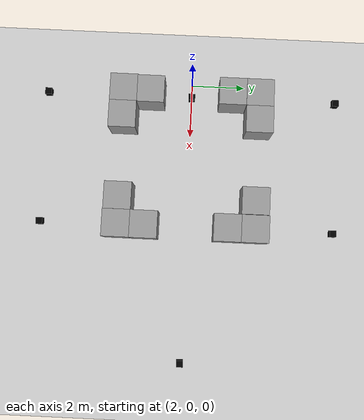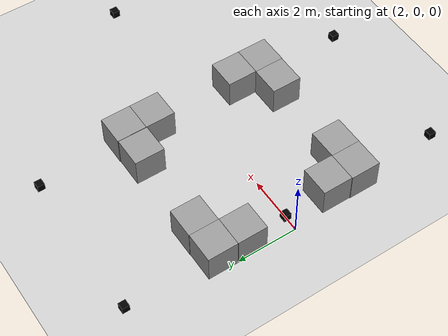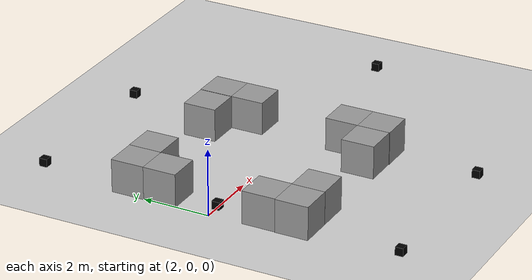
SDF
<sdf version="1.6">
 <world name="default">
  <light name="sun" type="directional">
   <pose>0 0 10 0 -0 0</pose>
   <diffuse>0.8 0.8 0.8 1</diffuse>
   <specular>0.2 0.2 0.2 1</specular>
   <attenuation>
    <range>1000</range>
    <constant>0.9</constant>
    <linear>0.01</linear>
    <quadratic>0.001</quadratic>
   </attenuation>
   <direction>-0.5 0.1 -0.9</direction>
  </light>
  <model name="ground_plane">
   <static>1</static>
   <link name="link">
    <collision name="collision">
     <geometry><plane><normal>0 0 1</normal><size>100 100</size></plane></geometry>
     <surface>
      <contact><collide_bitmask>65535</collide_bitmask></contact>
      <friction><ode><mu>100</mu><mu2>50</mu2></ode></friction>
     </surface>
    </collision>
    <visual name="visual">
     <cast_shadows>0</cast_shadows>
     <geometry><plane><normal>0 0 1</normal><size>100 100</size></plane></geometry>
     <material>
      <script><uri>file://media/materials/scripts/gazebo.material</uri><name>Gazebo/Grey</name></script>
     </material>
    </visual>
   </link>
  </model>
  <gravity>0 0 -9.8</gravity>
  <magnetic_field>6e-06 2.3e-05 -4.2e-05</magnetic_field>
  <atmosphere type="adiabatic"/>
  <physics name="default_physics" default="0" type="ode">
   <max_step_size>0.001</max_step_size>
   <real_time_factor>1</real_time_factor>
   <real_time_update_rate>1000</real_time_update_rate>
  </physics>
  <scene><ambient>0.4 0.4 0.4 1</ambient><background>0.7 0.7 0.7 1</background><shadows>1</shadows></scene>
  <audio><device>default</device></audio>
  <spherical_coordinates>
   <surface_model>EARTH_WGS84</surface_model>
   <latitude_deg>0</latitude_deg>
   <longitude_deg>0</longitude_deg>
   <elevation>0</elevation>
   <heading_deg>0</heading_deg>
  </spherical_coordinates>
  <model name="unit_box">
   <pose>2.48136 2.52142 0.499995 1e-05 -0 1.8e-05</pose>
   <link name="link">
    <inertial>
     <mass>1</mass>
     <inertia>
      <ixx>0.166667</ixx>
      <ixy>0</ixy>
      <ixz>0</ixz>
      <iyy>0.166667</iyy>
      <iyz>0</iyz>
      <izz>0.166667</izz>
     </inertia>
    </inertial>
    <collision name="collision"><geometry><box><size>1 1 1</size></box></geometry></collision>
    <visual name="visual">
     <geometry><box><size>1 1 1</size></box></geometry>
     <material>
      <script><name>Gazebo/Grey</name><uri>file://media/materials/scripts/gazebo.material</uri></script>
     </material>
    </visual>
   </link>
  </model>
  <model name="unit_box_0">
   <pose>2.49745 -2.5082 0.499995 1e-05 -0 -0.000193</pose>
   <link name="link">
    <inertial>
     <mass>1</mass>
     <inertia>
      <ixx>0.166667</ixx>
      <ixy>0</ixy>
      <ixz>0</ixz>
      <iyy>0.166667</iyy>
      <iyz>0</iyz>
      <izz>0.166667</izz>
     </inertia>
    </inertial>
    <collision name="collision"><geometry><box><size>1 1 1</size></box></geometry></collision>
    <visual name="visual">
     <geometry><box><size>1 1 1</size></box></geometry>
     <material>
      <script><name>Gazebo/Grey</name><uri>file://media/materials/scripts/gazebo.material</uri></script>
     </material>
    </visual>
   </link>
  </model>
  <model name="unit_box_1">
   <pose>7.50002 2.50256 0.499995 0 1e-05 -1.1e-05</pose>
   <link name="link">
    <inertial>
     <mass>1</mass>
     <inertia>
      <ixx>0.166667</ixx>
      <ixy>0</ixy>
      <ixz>0</ixz>
      <iyy>0.166667</iyy>
      <iyz>0</iyz>
      <izz>0.166667</izz>
     </inertia>
    </inertial>
    <collision name="collision"><geometry><box><size>1 1 1</size></box></geometry></collision>
    <visual name="visual">
     <geometry><box><size>1 1 1</size></box></geometry>
     <material>
      <script><name>Gazebo/Grey</name><uri>file://media/materials/scripts/gazebo.material</uri></script>
     </material>
    </visual>
   </link>
  </model>
  <model name="unit_box_2">
   <pose>7.5025 -2.52131 0.499995 0 1e-05 -0.000121</pose>
   <link name="link">
    <inertial>
     <mass>1</mass>
     <inertia>
      <ixx>0.166667</ixx>
      <ixy>0</ixy>
      <ixz>0</ixz>
      <iyy>0.166667</iyy>
      <iyz>0</iyz>
      <izz>0.166667</izz>
     </inertia>
    </inertial>
    <collision name="collision"><geometry><box><size>1 1 1</size></box></geometry></collision>
    <visual name="visual">
     <geometry><box><size>1 1 1</size></box></geometry>
     <material>
      <script><name>Gazebo/Grey</name><uri>file://media/materials/scripts/gazebo.material</uri></script>
     </material>
    </visual>
   </link>
  </model>
  <model name="aruco_box_0">
   <link name="link_0">
    <inertial>
     <mass>1</mass>
     <inertia>
      <ixx>0.166667</ixx>
      <ixy>0</ixy>
      <ixz>0</ixz>
      <iyy>0.166667</iyy>
      <iyz>0</iyz>
      <izz>0.166667</izz>
     </inertia>
    </inertial>
    <visual name="visual">
     <geometry><box><size>0.24 0.24 0.24</size></box></geometry>
     <material>
      <lighting>1</lighting>
      <script>
       <uri>model://aruco_box_0/materials/scripts</uri>
       <uri>model://aruco_box_0/materials/textures</uri>
       <name>Aruco/Id0</name>
      </script>
      <shader type="vertex"><normal_map>__default__</normal_map></shader>
      <ambient>0 0 0 1</ambient>
      <diffuse>0 0 0 1</diffuse>
      <specular>0 0 0 0</specular>
      <emissive>1 1 1 1</emissive>
     </material>
    </visual>
    <collision name="collision">
     <geometry><box><size>0.24 0.24 0.24</size></box></geometry>
     <surface>
      <friction>
       <ode><mu>1</mu><mu2>1</mu2><fdir1>0 0 0</fdir1><slip1>0</slip1><slip2>0</slip2></ode>
       <torsional>
        <coefficient>1</coefficient>
        <patch_radius>0</patch_radius>
        <surface_radius>0</surface_radius>
        <use_patch_radius>1</use_patch_radius>
        <ode><slip>0</slip></ode>
       </torsional>
      </friction>
      <bounce><restitution_coefficient>0</restitution_coefficient><threshold>1e+06</threshold></bounce>
      <contact>
       <collide_without_contact>0</collide_without_contact>
       <collide_without_contact_bitmask>1</collide_without_contact_bitmask>
       <collide_bitmask>1</collide_bitmask>
       <ode>
        <soft_cfm>0</soft_cfm>
        <soft_erp>0.2</soft_erp>
        <kp>1e+13</kp>
        <kd>1</kd>
        <max_vel>0.01</max_vel>
        <min_depth>0</min_depth>
       </ode>
       <bullet>
        <split_impulse>1</split_impulse>
        <split_impulse_penetration_threshold>-0.01</split_impulse_penetration_threshold>
        <soft_cfm>0</soft_cfm>
        <soft_erp>0.2</soft_erp>
        <kp>1e+13</kp>
        <kd>1</kd>
       </bullet>
      </contact>
     </surface>
    </collision>
   </link>
   <static>0</static>
   <pose>2.5 -0 0.12 0 -0 0</pose>
  </model>
  <model name="aruco_box_1">
   <link name="link_0">
    <inertial>
     <mass>1</mass>
     <inertia>
      <ixx>0.166667</ixx>
      <ixy>0</ixy>
      <ixz>0</ixz>
      <iyy>0.166667</iyy>
      <iyz>0</iyz>
      <izz>0.166667</izz>
     </inertia>
    </inertial>
    <visual name="visual">
     <geometry><box><size>0.24 0.24 0.24</size></box></geometry>
     <material>
      <lighting>1</lighting>
      <script>
       <uri>model://aruco_box_1/materials/scripts</uri>
       <uri>model://aruco_box_1/materials/textures</uri>
       <name>Aruco/Id1</name>
      </script>
      <shader type="vertex"><normal_map>__default__</normal_map></shader>
      <ambient>0 0 0 1</ambient>
      <diffuse>0 0 0 1</diffuse>
      <specular>0 0 0 0</specular>
      <emissive>1 1 1 1</emissive>
     </material>
    </visual>
    <collision name="collision">
     <geometry><box><size>0.24 0.24 0.24</size></box></geometry>
     <surface>
      <friction>
       <ode><mu>1</mu><mu2>1</mu2><fdir1>0 0 0</fdir1><slip1>0</slip1><slip2>0</slip2></ode>
       <torsional>
        <coefficient>1</coefficient>
        <patch_radius>0</patch_radius>
        <surface_radius>0</surface_radius>
        <use_patch_radius>1</use_patch_radius>
        <ode><slip>0</slip></ode>
       </torsional>
      </friction>
      <bounce><restitution_coefficient>0</restitution_coefficient><threshold>1e+06</threshold></bounce>
      <contact>
       <collide_without_contact>0</collide_without_contact>
       <collide_without_contact_bitmask>1</collide_without_contact_bitmask>
       <collide_bitmask>1</collide_bitmask>
       <ode>
        <soft_cfm>0</soft_cfm>
        <soft_erp>0.2</soft_erp>
        <kp>1e+13</kp>
        <kd>1</kd>
        <max_vel>0.01</max_vel>
        <min_depth>0</min_depth>
       </ode>
       <bullet>
        <split_impulse>1</split_impulse>
        <split_impulse_penetration_threshold>-0.01</split_impulse_penetration_threshold>
        <soft_cfm>0</soft_cfm>
        <soft_erp>0.2</soft_erp>
        <kp>1e+13</kp>
        <kd>1</kd>
       </bullet>
      </contact>
     </surface>
    </collision>
   </link>
   <static>0</static>
   <pose>2.5 5.5 0.12 0 -0 0</pose>
  </model>
  <model name="aruco_box_2">
   <link name="link_0">
    <inertial>
     <mass>1</mass>
     <inertia>
      <ixx>0.166667</ixx>
      <ixy>0</ixy>
      <ixz>0</ixz>
      <iyy>0.166667</iyy>
      <iyz>0</iyz>
      <izz>0.166667</izz>
     </inertia>
    </inertial>
    <visual name="visual">
     <geometry><box><size>0.24 0.24 0.24</size></box></geometry>
     <material>
      <lighting>1</lighting>
      <script>
       <uri>model://aruco_box_2/materials/scripts</uri>
       <uri>model://aruco_box_2/materials/textures</uri>
       <name>Aruco/Id2</name>
      </script>
      <shader type="vertex"><normal_map>__default__</normal_map></shader>
      <ambient>0 0 0 1</ambient>
      <diffuse>0 0 0 1</diffuse>
      <specular>0 0 0 0</specular>
      <emissive>1 1 1 1</emissive>
     </material>
    </visual>
    <collision name="collision">
     <geometry><box><size>0.24 0.24 0.24</size></box></geometry>
     <surface>
      <friction>
       <ode><mu>1</mu><mu2>1</mu2><fdir1>0 0 0</fdir1><slip1>0</slip1><slip2>0</slip2></ode>
       <torsional>
        <coefficient>1</coefficient>
        <patch_radius>0</patch_radius>
        <surface_radius>0</surface_radius>
        <use_patch_radius>1</use_patch_radius>
        <ode><slip>0</slip></ode>
       </torsional>
      </friction>
      <bounce><restitution_coefficient>0</restitution_coefficient><threshold>1e+06</threshold></bounce>
      <contact>
       <collide_without_contact>0</collide_without_contact>
       <collide_without_contact_bitmask>1</collide_without_contact_bitmask>
       <collide_bitmask>1</collide_bitmask>
       <ode>
        <soft_cfm>0</soft_cfm>
        <soft_erp>0.2</soft_erp>
        <kp>1e+13</kp>
        <kd>1</kd>
        <max_vel>0.01</max_vel>
        <min_depth>0</min_depth>
       </ode>
       <bullet>
        <split_impulse>1</split_impulse>
        <split_impulse_penetration_threshold>-0.01</split_impulse_penetration_threshold>
        <soft_cfm>0</soft_cfm>
        <soft_erp>0.2</soft_erp>
        <kp>1e+13</kp>
        <kd>1</kd>
       </bullet>
      </contact>
     </surface>
    </collision>
   </link>
   <static>0</static>
   <pose>7.5 5.5 0.12 0 -0 0</pose>
  </model>
  <model name="aruco_box_3">
   <link name="link_0">
    <inertial>
     <mass>1</mass>
     <inertia>
      <ixx>0.166667</ixx>
      <ixy>0</ixy>
      <ixz>0</ixz>
      <iyy>0.166667</iyy>
      <iyz>0</iyz>
      <izz>0.166667</izz>
     </inertia>
    </inertial>
    <visual name="visual">
     <geometry><box><size>0.24 0.24 0.24</size></box></geometry>
     <material>
      <lighting>1</lighting>
      <script>
       <uri>model://aruco_box_3/materials/scripts</uri>
       <uri>model://aruco_box_3/materials/textures</uri>
       <name>Aruco/Id3</name>
      </script>
      <shader type="vertex"><normal_map>__default__</normal_map></shader>
      <ambient>0 0 0 1</ambient>
      <diffuse>0 0 0 1</diffuse>
      <specular>0 0 0 0</specular>
      <emissive>1 1 1 1</emissive>
     </material>
    </visual>
    <collision name="collision">
     <geometry><box><size>0.24 0.24 0.24</size></box></geometry>
     <surface>
      <friction>
       <ode><mu>1</mu><mu2>1</mu2><fdir1>0 0 0</fdir1><slip1>0</slip1><slip2>0</slip2></ode>
       <torsional>
        <coefficient>1</coefficient>
        <patch_radius>0</patch_radius>
        <surface_radius>0</surface_radius>
        <use_patch_radius>1</use_patch_radius>
        <ode><slip>0</slip></ode>
       </torsional>
      </friction>
      <bounce><restitution_coefficient>0</restitution_coefficient><threshold>1e+06</threshold></bounce>
      <contact>
       <collide_without_contact>0</collide_without_contact>
       <collide_without_contact_bitmask>1</collide_without_contact_bitmask>
       <collide_bitmask>1</collide_bitmask>
       <ode>
        <soft_cfm>0</soft_cfm>
        <soft_erp>0.2</soft_erp>
        <kp>1e+13</kp>
        <kd>1</kd>
        <max_vel>0.01</max_vel>
        <min_depth>0</min_depth>
       </ode>
       <bullet>
        <split_impulse>1</split_impulse>
        <split_impulse_penetration_threshold>-0.01</split_impulse_penetration_threshold>
        <soft_cfm>0</soft_cfm>
        <soft_erp>0.2</soft_erp>
        <kp>1e+13</kp>
        <kd>1</kd>
       </bullet>
      </contact>
     </surface>
    </collision>
   </link>
   <static>0</static>
   <pose>12.5 0 0.12 0 -0 0</pose>
  </model>
  <model name="aruco_box_4">
   <link name="link_0">
    <inertial>
     <mass>1</mass>
     <inertia>
      <ixx>0.166667</ixx>
      <ixy>0</ixy>
      <ixz>0</ixz>
      <iyy>0.166667</iyy>
      <iyz>0</iyz>
      <izz>0.166667</izz>
     </inertia>
    </inertial>
    <visual name="visual">
     <geometry><box><size>0.24 0.24 0.24</size></box></geometry>
     <material>
      <lighting>1</lighting>
      <script>
       <uri>model://aruco_box_4/materials/scripts</uri>
       <uri>model://aruco_box_4/materials/textures</uri>
       <name>Aruco/Id4</name>
      </script>
      <shader type="vertex"><normal_map>__default__</normal_map></shader>
      <ambient>0 0 0 1</ambient>
      <diffuse>0 0 0 1</diffuse>
      <specular>0 0 0 0</specular>
      <emissive>1 1 1 1</emissive>
     </material>
    </visual>
    <collision name="collision">
     <geometry><box><size>0.24 0.24 0.24</size></box></geometry>
     <surface>
      <friction>
       <ode><mu>1</mu><mu2>1</mu2><fdir1>0 0 0</fdir1><slip1>0</slip1><slip2>0</slip2></ode>
       <torsional>
        <coefficient>1</coefficient>
        <patch_radius>0</patch_radius>
        <surface_radius>0</surface_radius>
        <use_patch_radius>1</use_patch_radius>
        <ode><slip>0</slip></ode>
       </torsional>
      </friction>
      <bounce><restitution_coefficient>0</restitution_coefficient><threshold>1e+06</threshold></bounce>
      <contact>
       <collide_without_contact>0</collide_without_contact>
       <collide_without_contact_bitmask>1</collide_without_contact_bitmask>
       <collide_bitmask>1</collide_bitmask>
       <ode>
        <soft_cfm>0</soft_cfm>
        <soft_erp>0.2</soft_erp>
        <kp>1e+13</kp>
        <kd>1</kd>
        <max_vel>0.01</max_vel>
        <min_depth>0</min_depth>
       </ode>
       <bullet>
        <split_impulse>1</split_impulse>
        <split_impulse_penetration_threshold>-0.01</split_impulse_penetration_threshold>
        <soft_cfm>0</soft_cfm>
        <soft_erp>0.2</soft_erp>
        <kp>1e+13</kp>
        <kd>1</kd>
       </bullet>
      </contact>
     </surface>
    </collision>
   </link>
   <static>0</static>
   <pose>7.5 -5.5 0.12 0 -0 0</pose>
  </model>
  <model name="aruco_box_5">
   <link name="link_0">
    <inertial>
     <mass>1</mass>
     <inertia>
      <ixx>0.166667</ixx>
      <ixy>0</ixy>
      <ixz>0</ixz>
      <iyy>0.166667</iyy>
      <iyz>0</iyz>
      <izz>0.166667</izz>
     </inertia>
    </inertial>
    <visual name="visual">
     <geometry><box><size>0.24 0.24 0.24</size></box></geometry>
     <material>
      <lighting>1</lighting>
      <script>
       <uri>model://aruco_box_5/materials/scripts</uri>
       <uri>model://aruco_box_5/materials/textures</uri>
       <name>Aruco/Id5</name>
      </script>
      <shader type="vertex"><normal_map>__default__</normal_map></shader>
      <ambient>0 0 0 1</ambient>
      <diffuse>0 0 0 1</diffuse>
      <specular>0 0 0 0</specular>
      <emissive>1 1 1 1</emissive>
     </material>
    </visual>
    <collision name="collision">
     <geometry><box><size>0.24 0.24 0.24</size></box></geometry>
     <surface>
      <friction>
       <ode><mu>1</mu><mu2>1</mu2><fdir1>0 0 0</fdir1><slip1>0</slip1><slip2>0</slip2></ode>
       <torsional>
        <coefficient>1</coefficient>
        <patch_radius>0</patch_radius>
        <surface_radius>0</surface_radius>
        <use_patch_radius>1</use_patch_radius>
        <ode><slip>0</slip></ode>
       </torsional>
      </friction>
      <bounce><restitution_coefficient>0</restitution_coefficient><threshold>1e+06</threshold></bounce>
      <contact>
       <collide_without_contact>0</collide_without_contact>
       <collide_without_contact_bitmask>1</collide_without_contact_bitmask>
       <collide_bitmask>1</collide_bitmask>
       <ode>
        <soft_cfm>0</soft_cfm>
        <soft_erp>0.2</soft_erp>
        <kp>1e+13</kp>
        <kd>1</kd>
        <max_vel>0.01</max_vel>
        <min_depth>0</min_depth>
       </ode>
       <bullet>
        <split_impulse>1</split_impulse>
        <split_impulse_penetration_threshold>-0.01</split_impulse_penetration_threshold>
        <soft_cfm>0</soft_cfm>
        <soft_erp>0.2</soft_erp>
        <kp>1e+13</kp>
        <kd>1</kd>
       </bullet>
      </contact>
     </surface>
    </collision>
   </link>
   <static>0</static>
   <pose>2.5 -5.5 0.12 0 -0 0</pose>
  </model>
  <model name="unit_box_3">
   <pose>2.48073 1.52096 0.499995 0 1e-05 0</pose>
   <link name="link">
    <inertial>
     <mass>1</mass>
     <inertia>
      <ixx>0.166667</ixx>
      <ixy>0</ixy>
      <ixz>0</ixz>
      <iyy>0.166667</iyy>
      <iyz>0</iyz>
      <izz>0.166667</izz>
     </inertia>
    </inertial>
    <collision name="collision"><geometry><box><size>1 1 1</size></box></geometry></collision>
    <visual name="visual">
     <geometry><box><size>1 1 1</size></box></geometry>
     <material>
      <script><name>Gazebo/Grey</name><uri>file://media/materials/scripts/gazebo.material</uri></script>
     </material>
    </visual>
   </link>
  </model>
  <model name="unit_box_4">
   <pose>3.48136 2.53134 0.499995 -1e-05 0 1.8e-05</pose>
   <link name="link">
    <inertial>
     <mass>1</mass>
     <inertia>
      <ixx>0.166667</ixx>
      <ixy>0</ixy>
      <ixz>0</ixz>
      <iyy>0.166667</iyy>
      <iyz>0</iyz>
      <izz>0.166667</izz>
     </inertia>
    </inertial>
    <collision name="collision"><geometry><box><size>1 1 1</size></box></geometry></collision>
    <visual name="visual">
     <geometry><box><size>1 1 1</size></box></geometry>
     <material>
      <script><name>Gazebo/Grey</name><uri>file://media/materials/scripts/gazebo.material</uri></script>
     </material>
    </visual>
   </link>
  </model>
  <model name="unit_box_5">
   <pose>6.48763 2.48759 0.499995 0 1e-05 0</pose>
   <link name="link">
    <inertial>
     <mass>1</mass>
     <inertia>
      <ixx>0.166667</ixx>
      <ixy>0</ixy>
      <ixz>0</ixz>
      <iyy>0.166667</iyy>
      <iyz>0</iyz>
      <izz>0.166667</izz>
     </inertia>
    </inertial>
    <collision name="collision"><geometry><box><size>1 1 1</size></box></geometry></collision>
    <visual name="visual">
     <geometry><box><size>1 1 1</size></box></geometry>
     <material>
      <script><name>Gazebo/Grey</name><uri>file://media/materials/scripts/gazebo.material</uri></script>
     </material>
    </visual>
   </link>
  </model>
  <model name="unit_box_6">
   <pose>7.5 1.50255 0.499995 0 1e-05 -1.1e-05</pose>
   <link name="link">
    <inertial>
     <mass>1</mass>
     <inertia>
      <ixx>0.166667</ixx>
      <ixy>0</ixy>
      <ixz>0</ixz>
      <iyy>0.166667</iyy>
      <iyz>0</iyz>
      <izz>0.166667</izz>
     </inertia>
    </inertial>
    <collision name="collision"><geometry><box><size>1 1 1</size></box></geometry></collision>
    <visual name="visual">
     <geometry><box><size>1 1 1</size></box></geometry>
     <material>
      <script><name>Gazebo/Grey</name><uri>file://media/materials/scripts/gazebo.material</uri></script>
     </material>
    </visual>
   </link>
  </model>
  <model name="unit_box_7">
   <pose>7.506 -1.52129 0.499995 0 1e-05 -0.000152</pose>
   <link name="link">
    <inertial>
     <mass>1</mass>
     <inertia>
      <ixx>0.166667</ixx>
      <ixy>0</ixy>
      <ixz>0</ixz>
      <iyy>0.166667</iyy>
      <iyz>0</iyz>
      <izz>0.166667</izz>
     </inertia>
    </inertial>
    <collision name="collision"><geometry><box><size>1 1 1</size></box></geometry></collision>
    <visual name="visual">
     <geometry><box><size>1 1 1</size></box></geometry>
     <material>
      <script><name>Gazebo/Grey</name><uri>file://media/materials/scripts/gazebo.material</uri></script>
     </material>
    </visual>
   </link>
  </model>
  <model name="unit_box_8">
   <pose>6.50247 -2.5077 0.499995 1e-05 -0 -0.000122</pose>
   <link name="link">
    <inertial>
     <mass>1</mass>
     <inertia>
      <ixx>0.166667</ixx>
      <ixy>0</ixy>
      <ixz>0</ixz>
      <iyy>0.166667</iyy>
      <iyz>0</iyz>
      <izz>0.166667</izz>
     </inertia>
    </inertial>
    <collision name="collision"><geometry><box><size>1 1 1</size></box></geometry></collision>
    <visual name="visual">
     <geometry><box><size>1 1 1</size></box></geometry>
     <material>
      <script><name>Gazebo/Grey</name><uri>file://media/materials/scripts/gazebo.material</uri></script>
     </material>
    </visual>
   </link>
  </model>
  <model name="unit_box_9">
   <pose>3.49756 -2.50922 0.499995 0 1e-05 -1.6e-05</pose>
   <link name="link">
    <inertial>
     <mass>1</mass>
     <inertia>
      <ixx>0.166667</ixx>
      <ixy>0</ixy>
      <ixz>0</ixz>
      <iyy>0.166667</iyy>
      <iyz>0</iyz>
      <izz>0.166667</izz>
     </inertia>
    </inertial>
    <collision name="collision"><geometry><box><size>1 1 1</size></box></geometry></collision>
    <visual name="visual">
     <geometry><box><size>1 1 1</size></box></geometry>
     <material>
      <script><name>Gazebo/Grey</name><uri>file://media/materials/scripts/gazebo.material</uri></script>
     </material>
    </visual>
   </link>
  </model>
  <model name="unit_box_10">
   <pose>2.51716 -1.50821 0.499995 1e-05 0 -0.0002</pose>
   <link name="link">
    <inertial>
     <mass>1</mass>
     <inertia>
      <ixx>0.166667</ixx>
      <ixy>0</ixy>
      <ixz>0</ixz>
      <iyy>0.166667</iyy>
      <iyz>0</iyz>
      <izz>0.166667</izz>
     </inertia>
    </inertial>
    <collision name="collision"><geometry><box><size>1 1 1</size></box></geometry></collision>
    <visual name="visual">
     <geometry><box><size>1 1 1</size></box></geometry>
     <material>
      <script><name>Gazebo/Grey</name><uri>file://media/materials/scripts/gazebo.material</uri></script>
     </material>
    </visual>
   </link>
  </model>
 </world>
</sdf>
